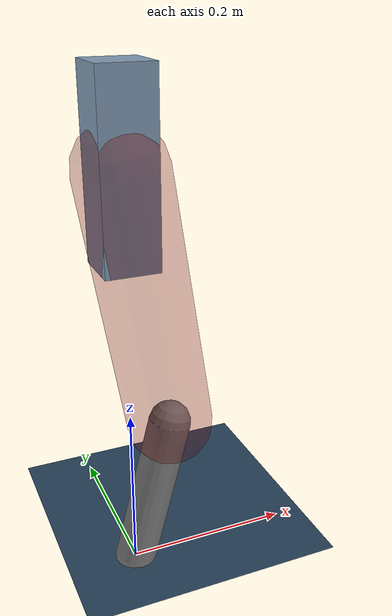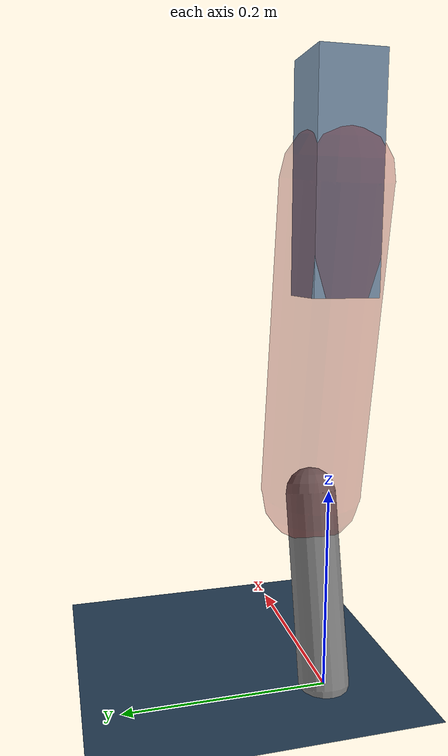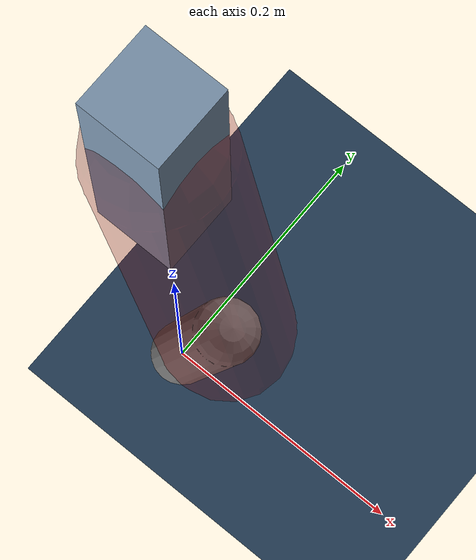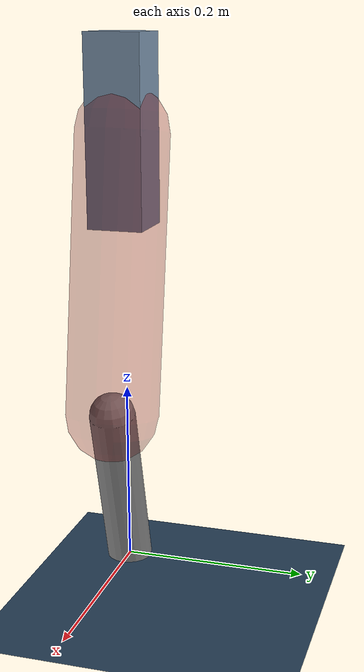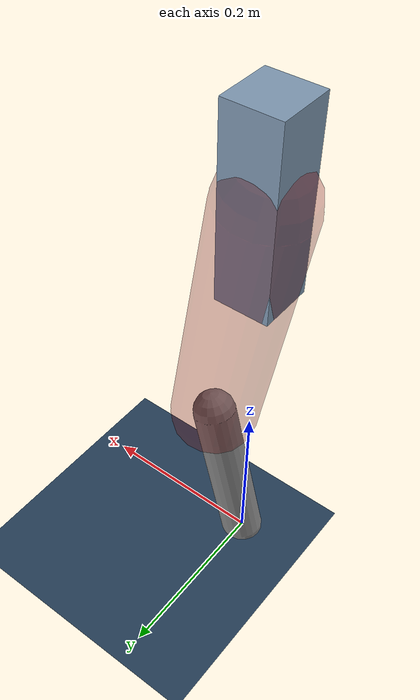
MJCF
<mujoco model="Hopper2D">
	<compiler inertiafromgeom="true" angle="radian" />
	<option timestep="0.001" integrator="implicit" cone="elliptic" solver="Newton" tolerance="1e-10" />

	<default>
		<geom contype="1" conaffinity="1" condim="3" friction="2 0.005 0.0001" solref="0.005 1" />
		<joint limited="true" damping="0.1" />
	</default>

	<asset>
		<texture name="skybox" type="skybox" builtin="gradient" rgb1=".4 .6 .8" rgb2="0 0 0" width="800" height="800" />
		<texture name="grid" type="2d" builtin="checker" rgb1=".1 .2 .3" rgb2=".2 .3 .4" width="300" height="300" mark="edge" markrgb=".2 .3 .4" />
		<material name="ground" texture="grid" texrepeat="1 1" texuniform="true" reflectance="0.1" />
		<material name="leg" rgba="0.5 0.6 0.7 1" />
	</asset>

	<worldbody>

		<geom name="floor" type="plane" size="5 5 0.25" material="ground" />

		<light directional="false" diffuse="0.8 0.8 0.8" specular="0.3 0.3 0.3" pos="0 0 2" dir="0 0 -1" />
		<light mode="targetbodycom" target="base" directional="false" diffuse="0.8 0.8 0.8" specular="0.3 0.3 0.3" pos="0 0 2" dir="0 0 -1" />

		<camera name="fixed" pos="0 -2 1" xyaxes="1 0 0 0 0 1" />
		<camera name="tracking" mode="trackcom" pos="0 -3 1" />

		<body name="root" pos="0 0 0.4812156731340424">
			<joint name="slide_x" type="slide" axis="1 0 0" range="-100 100" />
			<joint name="slide_z" type="slide" axis="0 0 1" range="0 10" />

			<body name="base" pos="0 0 0">
				<geom name="torso" type="box" size="0.03 0.03 0.1" mass="2.089" material="leg" />

				<body name="link1" pos="0 0 0" euler="0 1.410499470927265 0">
					<joint type="hinge" axis="0 -1 0" pos="0 0 0" name="hinge1" limited="true" range="-3.14 3.14" stiffness="0" damping="0.1" />
					<geom name="thigh" type="capsule" fromto="0 0 0 0.30070463304043926 0 0" size="0.05" rgba="0.5 0 0 0.3" mass="0.990602509209186" />

					<body name="link2" pos="0.30070463304043926 0 0" euler="0 0.4149730915370051 0">
						<joint type="hinge" axis="0 -1 0" pos="0 0 0" name="hinge2" limited="true" range="-3.14 3.14" stiffness="0" damping="0.1" />
						<geom name="shank" type="capsule" fromto="0 0 0 0.19051104009360315 0 0" size="0.025" mass="0.39285993608424286" />

					</body>
				</body>
			</body>
		</body>
	</worldbody>

	<actuator>
		<motor name="torque1" joint="hinge1" ctrlrange="-60.85242564604563 60.85242564604563" ctrllimited="true" gear="1" />
		<motor name="torque2" joint="hinge2" ctrlrange="-70.22145508884175 70.22145508884175" ctrllimited="true" gear="1" />
	</actuator>
</mujoco>
